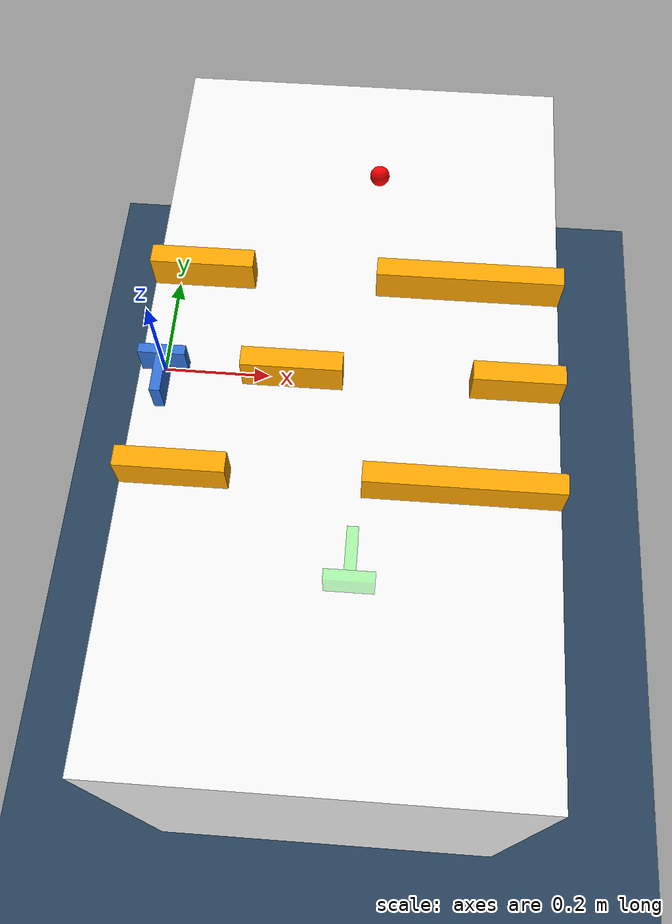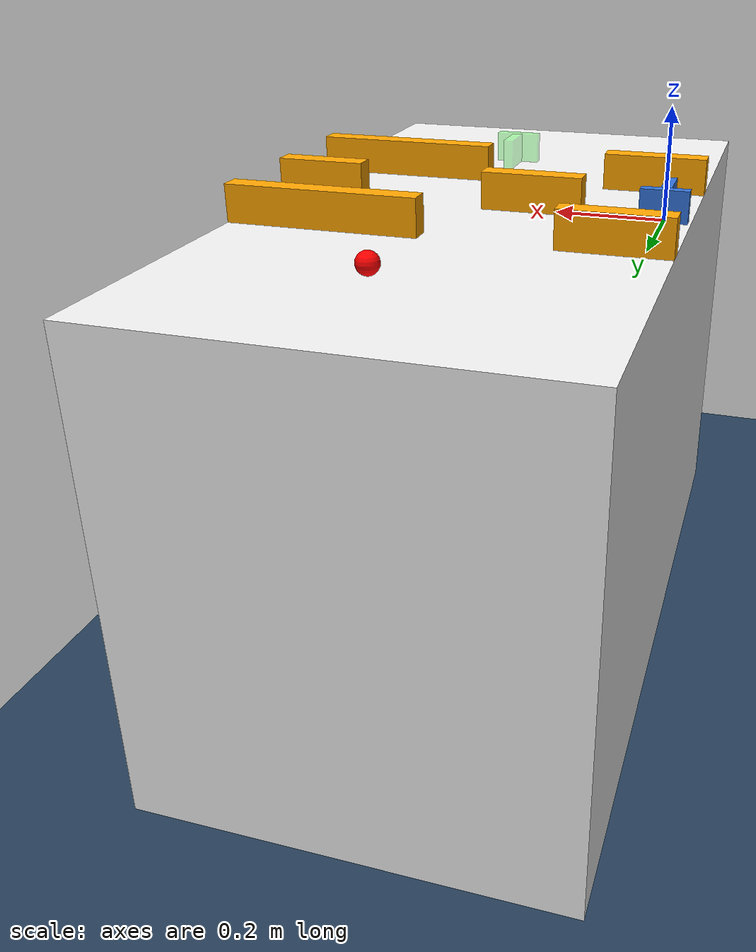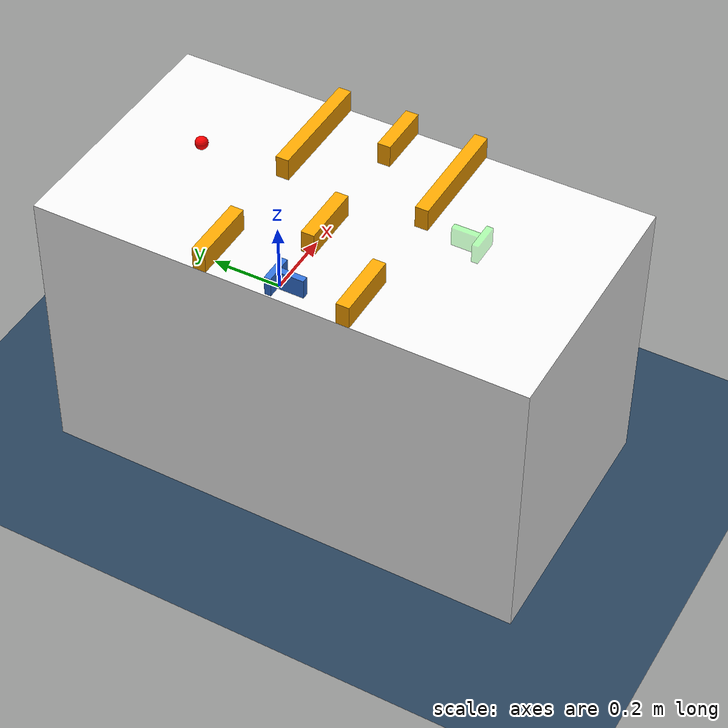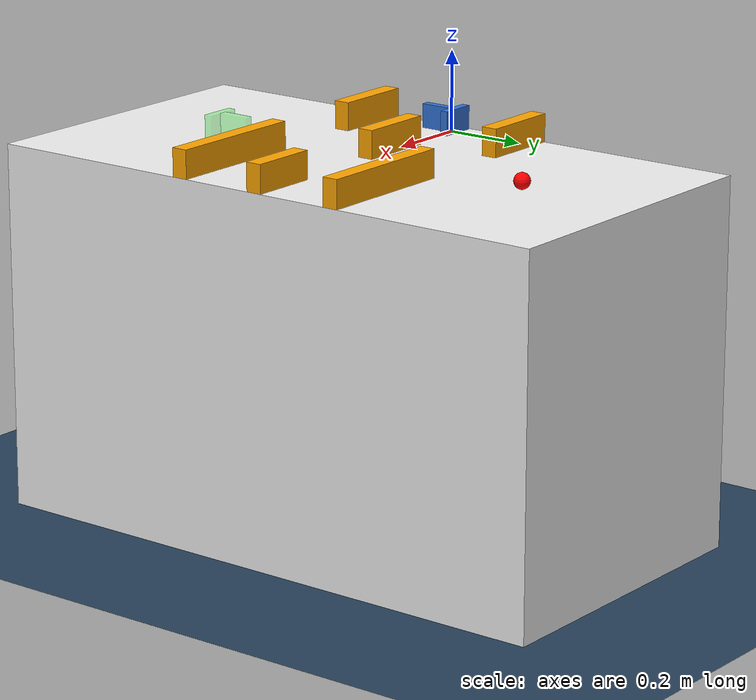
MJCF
<mujoco model="xarm6_pusht_slalom_point">
  <include file="common_point.xml"/>
  <include file="tee.xml"/>

  <worldbody>
    <camera name="front" pos="1.0310 0.0450 1.2258"
      xyaxes="0.0000 1.0000 0.0000 -0.8660 0.0000 0.5000"/>

    <geom class="tabletop_obstacle" name="fin_1_near" type="box" size="0.10 0.02 0.035" pos="0.05 0.22 0.035"/>
    <geom class="tabletop_obstacle" name="fin_1_far" type="box" size="0.18 0.02 0.035" pos="0.57 0.22 0.035"/>
    <geom class="tabletop_obstacle" name="fin_2_near" type="box" size="0.095 0.02 0.035" pos="0.245 0.0 0.035"/>
    <geom class="tabletop_obstacle" name="fin_2_far" type="box" size="0.085 0.02 0.035" pos="0.665 0.0 0.035"/>
    <geom class="tabletop_obstacle" name="fin_3_near" type="box" size="0.10 0.02 0.035" pos="0.05 -0.22 0.035"/>
    <geom class="tabletop_obstacle" name="fin_3_far" type="box" size="0.18 0.02 0.035" pos="0.57 -0.22 0.035"/>

    <body name="pusher" pos="0.381 0.480 0.0298">
      <joint name="root_x" type="slide" axis="1 0 0" damping="0.05"/>
      <joint name="root_y" type="slide" axis="0 1 0" damping="0.05"/>
      <geom name="pusher" type="sphere" size="0.02" mass="1.0" rgba="1 0 0 1" solref="0.02 1"/>
      <site name="pusher" pos="0 0 0" rgba="0 0 0 0"/>
    </body>
  </worldbody>

  <actuator>
    <velocity name="x_motor" joint="root_x" ctrllimited="true" ctrlrange="-0.6 0.6" kv="100" forcerange="-60 60"/>
    <velocity name="y_motor" joint="root_y" ctrllimited="true" ctrlrange="-0.6 0.6" kv="100" forcerange="-60 60"/>
  </actuator>

  <keyframe>
    <key name="start" qpos="0.381 0.400 0 0 0 0"/>
  </keyframe>
</mujoco>

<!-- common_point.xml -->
<mujoco model="xarm6_pusht_tabletop_common_point">
  <compiler angle="degree"/>

  <option timestep="0.01" gravity="0 0 -9.81" iterations="20" ls_iterations="20" integrator="implicitfast"/>

  <default>
    <geom friction="0.5 0.005 0.0001" solref="0.004 1" solimp="0.9 0.95 0.001"/>
    <default class="goal">
      <geom conaffinity="0" contype="0" rgba="0 1 0 0.3"/>
    </default>
    <default class="object_plan">
      <geom conaffinity="0" contype="0" rgba="0 0.30 0.95 0.25"/>
    </default>
    <default class="obstacle">
      <geom conaffinity="1" contype="1" rgba="0.5 0.5 0.5 1"/>
    </default>
    <default class="tabletop_obstacle">
      <geom conaffinity="1" contype="1" rgba="1.0 0.647 0.0 1"/>
    </default>
  </default>

  <visual>
    <headlight diffuse="0.6 0.6 0.6" ambient="0.3 0.3 0.3" specular="0 0 0"/>
    <rgba haze="0.15 0.25 0.35 1"/>
  </visual>

  <asset>
    <texture type="skybox" builtin="gradient" rgb1="0.3 0.5 0.7" rgb2="0 0 0" width="512" height="3072"/>
    <texture type="2d" name="groundplane" builtin="checker" mark="edge" rgb1="0.2 0.3 0.4" rgb2="0.1 0.2 0.3"
      markrgb="0.8 0.8 0.8" width="300" height="300"/>
    <material name="groundplane" texture="groundplane" texuniform="true" texrepeat="5 5" reflectance="0.2"/>
  </asset>

  <worldbody>
    <light pos="0.3 0.0 1"/>
    <!-- Room floor at the lab table's own foot, 0.91 m below the top -- see
         common.xml's own floor comment for the contype/conaffinity split. -->
    <geom name="floor" size="0 0 .125" type="plane" pos="0 0 -0.91"
      contype="2" conaffinity="2" material="groundplane"/>
  </worldbody>
</mujoco>

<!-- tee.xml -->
<mujoco model="xarm6_pusht_tabletop_tee">

  <worldbody>
    <geom name="table" type="box" size="0.40 0.7615 0.455" pos="0.35 0 -0.455"
      contype="3" conaffinity="3" rgba="0.95 0.95 0.95 1"/>

    <body name="goal" mocap="true" pos="0.381 -0.400 0.0298" quat="0 0 0 1">
      <geom class="goal" name="goal_crossbar" type="box" size="0.0445 0.0099 0.0298" pos="0.0 0.0099 0.0"/>
      <geom class="goal" name="goal_stem" type="box" size="0.0099 0.0397 0.0298" pos="0.0 -0.0397 0.0"/>
    </body>

    <body name="object_plan" mocap="true" pos="0.0 0.0 0.0298" quat="1 0 0 0">
      <geom class="object_plan" name="object_plan_crossbar" type="box" size="0.0445 0.0099 0.0298" pos="0.0 0.0099 0.0"/>
      <geom class="object_plan" name="object_plan_stem" type="box" size="0.0099 0.0397 0.0298" pos="0.0 -0.0397 0.0"/>
    </body>

    <body name="block" pos="0.0 0.0 0.0298">
      <joint name="T_x" type="slide" axis="1 0 0" damping="0.0"/>
      <joint name="T_y" type="slide" axis="0 1 0" damping="0.0"/>
      <joint name="T_z" type="hinge" axis="0 0 1" damping="0.0"/>
      <joint name="T_zs" type="slide" axis="0 0 1" damping="0.0"/>
      <geom name="block_crossbar" contype="3" conaffinity="3" type="box" size="0.0445 0.0099 0.0298" pos="0.0 0.0099 0.0" mass="0.05" rgba="0.2 0.45 0.85 1"/>
      <geom name="block_stem" contype="3" conaffinity="3" type="box" size="0.0099 0.0397 0.0298" pos="0.0 -0.0397 0.0" mass="0.05" rgba="0.2 0.45 0.85 1"/>
    </body>
  </worldbody>

  <contact>
    <pair geom1="block_crossbar" geom2="table" condim="3" friction="0.3 0.3 0.005 0.0001 0.0001" solimp="0.999 0.9999 0.0001"/>
    <pair geom1="block_stem" geom2="table" condim="3" friction="0.3 0.3 0.005 0.0001 0.0001" solimp="0.999 0.9999 0.0001"/>
  </contact>

  <sensor>
    <framepos name="position" objtype="body" objname="block" reftype="body" refname="goal"/>
    <framequat name="orientation" objtype="body" objname="block" reftype="body" refname="goal"/>
  </sensor>

  <statistic center="0.381 0 0" extent="0.9"/>
</mujoco>
